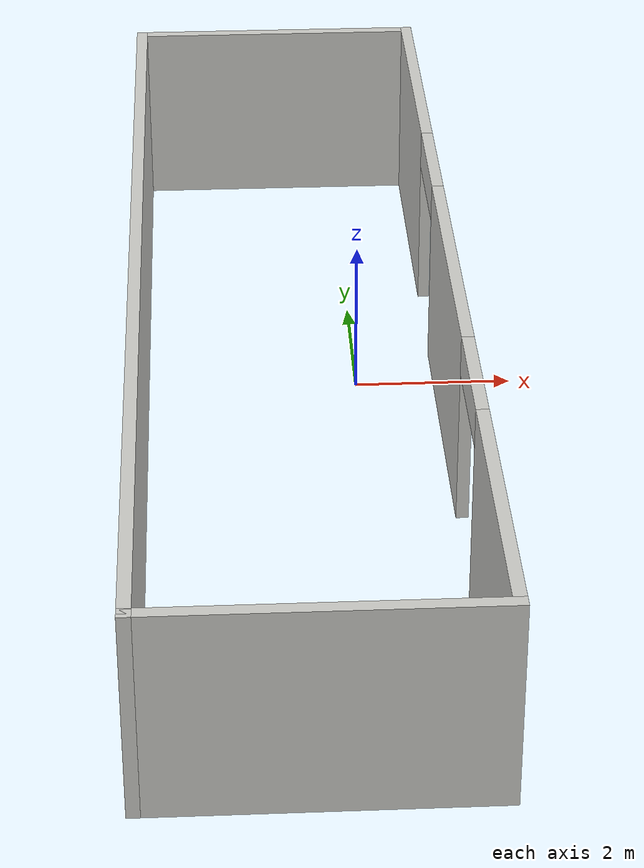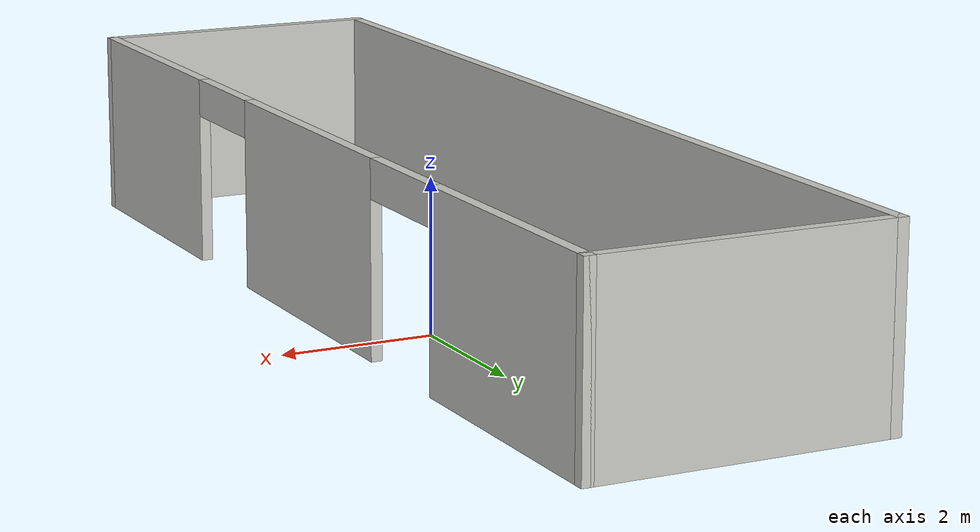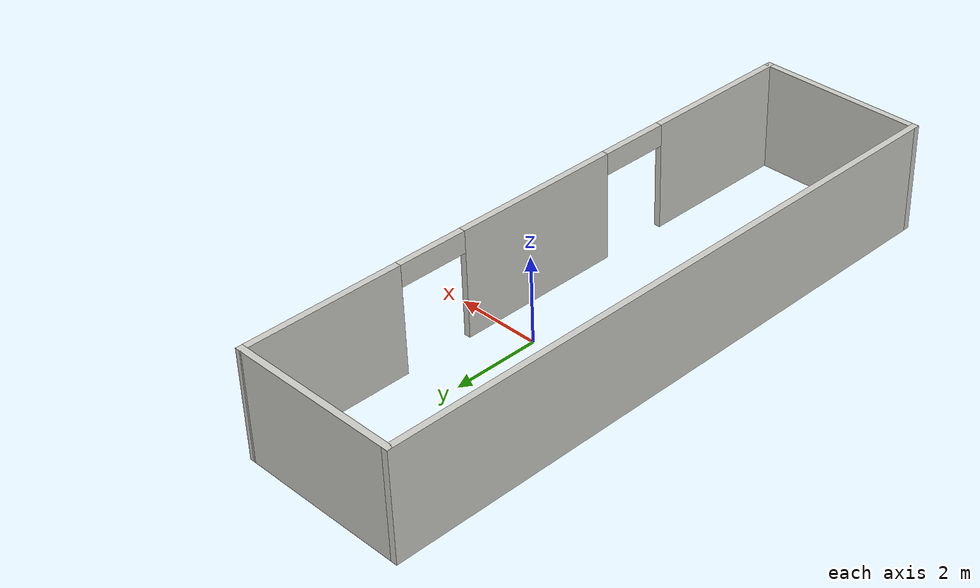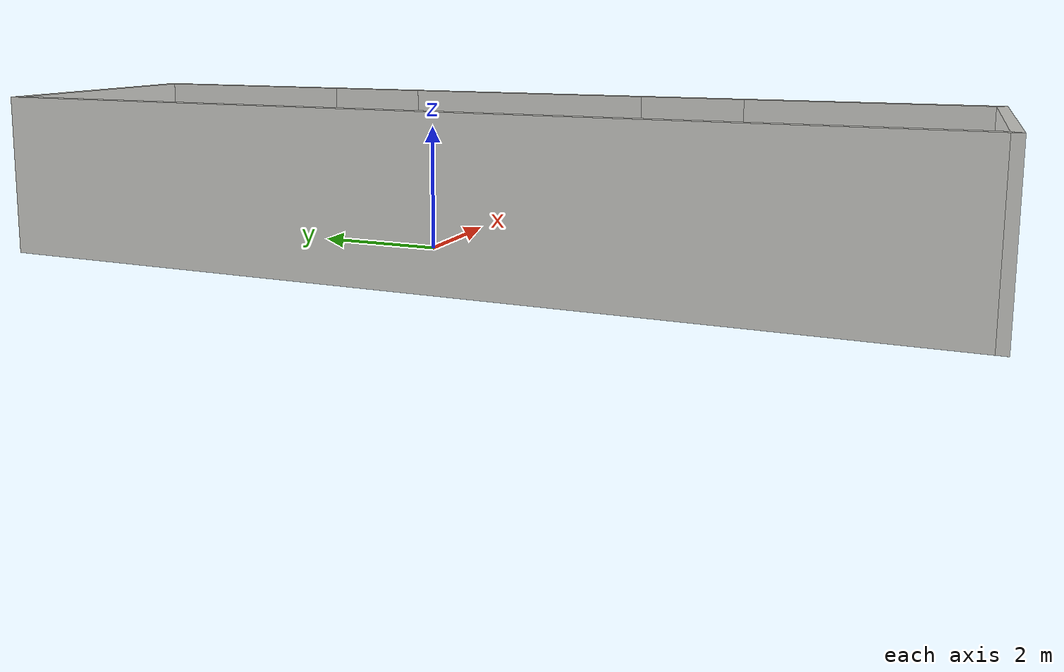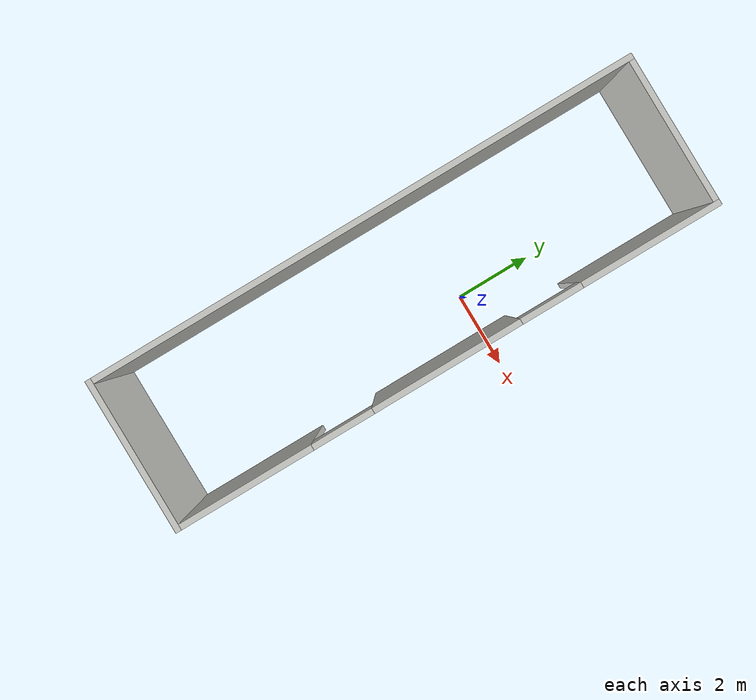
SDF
<?xml version='1.0'?>
<sdf version='1.7'>
  <model name='lab_2'>
    <pose>-0.844913 -1.202 0 0 -0 0</pose>
    <link name='Wall_10'>
      <collision name='Wall_10_Collision'>
        <geometry>
          <box>
            <size>4 0.15 2.5</size>
          </box>
        </geometry>
        <pose>0 0 1.25 0 -0 0</pose>
      </collision>
      <visual name='Wall_10_Visual'>
        <pose>0 0 1.25 0 -0 0</pose>
        <geometry>
          <box>
            <size>4 0.15 2.5</size>
          </box>
        </geometry>
        <material>
          <script>
            <uri>file://media/materials/scripts/gazebo.material</uri>
            <name>Gazebo/CeilingTiled</name>
          </script>
          <ambient>1 1 1 1</ambient>
        </material>
        <meta>
          <layer>0</layer>
        </meta>
      </visual>
      <pose>-8.7e-05 -7.125 0 0 -0 3.14159</pose>
    </link>
    <link name='Wall_11'>
      <collision name='Wall_11_Collision'>
        <geometry>
          <box>
            <size>14.4 0.15 2.5</size>
          </box>
        </geometry>
        <pose>0 0 1.25 0 -0 0</pose>
      </collision>
      <visual name='Wall_11_Visual'>
        <pose>0 0 1.25 0 -0 0</pose>
        <geometry>
          <box>
            <size>14.4 0.15 2.5</size>
          </box>
        </geometry>
        <material>
          <script>
            <uri>file://media/materials/scripts/gazebo.material</uri>
            <name>Gazebo/CeilingTiled</name>
          </script>
          <ambient>1 1 1 1</ambient>
        </material>
        <meta>
          <layer>0</layer>
        </meta>
      </visual>
      <pose>-1.92509 -2e-06 0 0 -0 1.5708</pose>
    </link>
    <link name='Wall_13'>
      <pose>1.92491 -2e-06 0 0 -0 -1.5708</pose>
      <visual name='Wall_13_Visual_0'>
        <pose>-5.37609 0 1.25 0 -0 0</pose>
        <geometry>
          <box>
            <size>3.64782 0.15 2.5</size>
          </box>
        </geometry>
        <material>
          <script>
            <uri>file://media/materials/scripts/gazebo.material</uri>
            <name>Gazebo/CeilingTiled</name>
          </script>
          <ambient>1 1 1 1</ambient>
        </material>
        <meta>
          <layer>0</layer>
        </meta>
      </visual>
      <collision name='Wall_13_Collision_0'>
        <geometry>
          <box>
            <size>3.64782 0.15 2.5</size>
          </box>
        </geometry>
        <pose>-5.37609 0 1.25 0 -0 0</pose>
      </collision>
      <visual name='Wall_13_Visual_1'>
        <pose>0.0025 0 1.25 0 -0 0</pose>
        <geometry>
          <box>
            <size>3.90937 0.15 2.5</size>
          </box>
        </geometry>
        <material>
          <script>
            <uri>file://media/materials/scripts/gazebo.material</uri>
            <name>Gazebo/CeilingTiled</name>
          </script>
          <ambient>1 1 1 1</ambient>
        </material>
        <meta>
          <layer>0</layer>
        </meta>
      </visual>
      <collision name='Wall_13_Collision_1'>
        <geometry>
          <box>
            <size>3.90937 0.15 2.5</size>
          </box>
        </geometry>
        <pose>0.0025 0 1.25 0 -0 0</pose>
      </collision>
      <visual name='Wall_13_Visual_2'>
        <pose>5.37859 0 1.25 0 -0 0</pose>
        <geometry>
          <box>
            <size>3.64282 0.15 2.5</size>
          </box>
        </geometry>
        <material>
          <script>
            <uri>file://media/materials/scripts/gazebo.material</uri>
            <name>Gazebo/CeilingTiled</name>
          </script>
          <ambient>1 1 1 1</ambient>
        </material>
        <meta>
          <layer>0</layer>
        </meta>
      </visual>
      <collision name='Wall_13_Collision_2'>
        <geometry>
          <box>
            <size>3.64282 0.15 2.5</size>
          </box>
        </geometry>
        <pose>5.37859 0 1.25 0 -0 0</pose>
      </collision>
      <visual name='Wall_13_Visual_3'>
        <pose>-2.75218 0 2.25 0 -0 0</pose>
        <geometry>
          <box>
            <size>1.6 0.15 0.5</size>
          </box>
        </geometry>
        <material>
          <script>
            <uri>file://media/materials/scripts/gazebo.material</uri>
            <name>Gazebo/CeilingTiled</name>
          </script>
          <ambient>1 1 1 1</ambient>
        </material>
        <meta>
          <layer>0</layer>
        </meta>
      </visual>
      <collision name='Wall_13_Collision_3'>
        <geometry>
          <box>
            <size>1.6 0.15 0.5</size>
          </box>
        </geometry>
        <pose>-2.75218 0 2.25 0 -0 0</pose>
      </collision>
      <visual name='Wall_13_Visual_4'>
        <pose>2.75719 0 2.25 0 -0 0</pose>
        <geometry>
          <box>
            <size>1.6 0.15 0.5</size>
          </box>
        </geometry>
        <material>
          <script>
            <uri>file://media/materials/scripts/gazebo.material</uri>
            <name>Gazebo/CeilingTiled</name>
          </script>
          <ambient>1 1 1 1</ambient>
        </material>
        <meta>
          <layer>0</layer>
        </meta>
      </visual>
      <collision name='Wall_13_Collision_4'>
        <geometry>
          <box>
            <size>1.6 0.15 0.5</size>
          </box>
        </geometry>
        <pose>2.75719 0 2.25 0 -0 0</pose>
      </collision>
    </link>
    <link name='Wall_4'>
      <collision name='Wall_4_Collision'>
        <geometry>
          <box>
            <size>4 0.15 2.5</size>
          </box>
        </geometry>
        <pose>0 0 1.25 0 -0 0</pose>
      </collision>
      <visual name='Wall_4_Visual'>
        <pose>0 0 1.25 0 -0 0</pose>
        <geometry>
          <box>
            <size>4 0.15 2.5</size>
          </box>
        </geometry>
        <material>
          <script>
            <uri>file://media/materials/scripts/gazebo.material</uri>
            <name>Gazebo/CeilingTiled</name>
          </script>
          <ambient>1 1 1 1</ambient>
        </material>
        <meta>
          <layer>0</layer>
        </meta>
      </visual>
      <pose>8.4e-05 7.1249 0 0 -0 5.2e-05</pose>
    </link>
    <static>1</static>
  </model>
</sdf>
